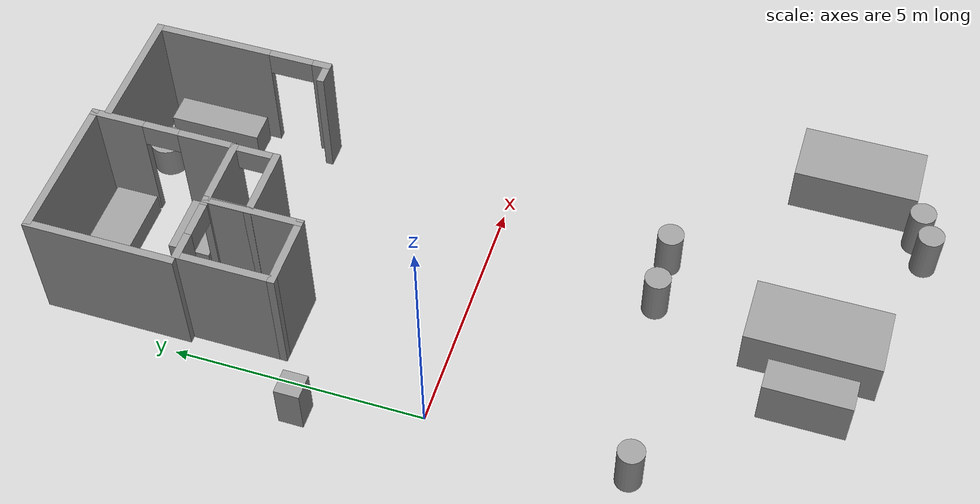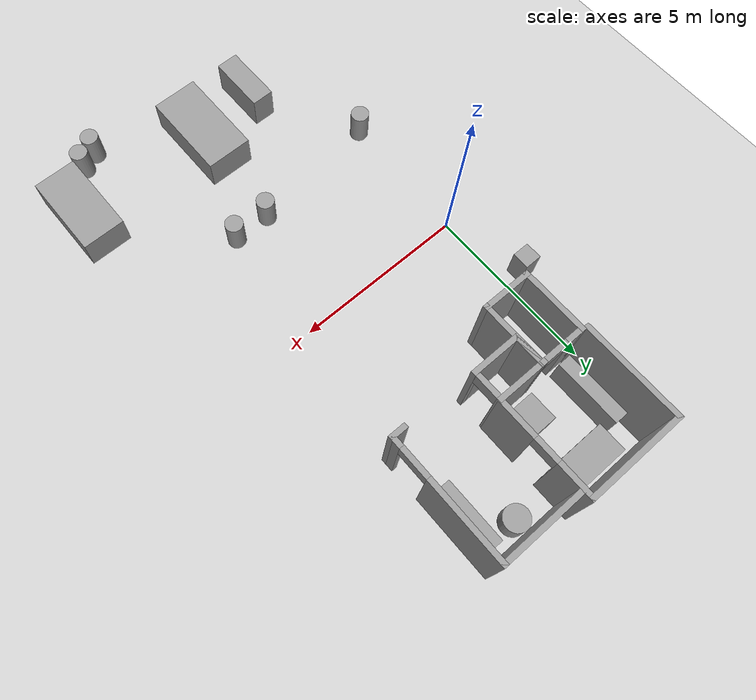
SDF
<sdf version="1.9">
 <world name="default">
  <model name="ground_plane">
   <static>true</static>
   <link name="link">
    <collision name="collision">
     <geometry><plane><normal>0 0 1</normal><size>100 100</size></plane></geometry>
     <surface><friction><ode><mu>100</mu><mu2>50</mu2></ode></friction></surface>
    </collision>
    <visual name="visual">
     <cast_shadows>false</cast_shadows>
     <geometry><plane><normal>0 0 1</normal><size>100 100</size></plane></geometry>
     <material>
      <script><uri>file://media/materials/scripts/gazebo.material</uri><name>Gazebo/Grey</name></script>
     </material>
    </visual>
   </link>
  </model>
  <model name="cma_dispensa">
   <pose>2.5258400000000001 4.4011899999999997 0 0 0 0</pose>
   <link name="Wall_5">
    <collision name="Wall_5_Collision">
     <geometry><box><size>1 0.14999999999999999 2.5</size></box></geometry>
     <pose>0 0 1.25 0 0 0</pose>
    </collision>
    <visual name="Wall_5_Visual">
     <pose>0 0 1.25 0 0 0</pose>
     <geometry><box><size>1 0.14999999999999999 2.5</size></box></geometry>
     <material>
      <script><uri>file://media/materials/scripts/gazebo.material</uri><name>Gazebo/Grey</name></script>
      <ambient>1 1 1 1</ambient>
     </material>
    </visual>
    <pose>-0.67500000000000004 0 0 0 0 1.5708</pose>
   </link>
   <link name="Wall_6">
    <collision name="Wall_6_Collision">
     <geometry><box><size>1.5 0.14999999999999999 2.5</size></box></geometry>
     <pose>0 0 1.25 0 0 0</pose>
    </collision>
    <visual name="Wall_6_Visual">
     <pose>0 0 1.25 0 0 0</pose>
     <geometry><box><size>1.5 0.14999999999999999 2.5</size></box></geometry>
     <material>
      <script><uri>file://media/materials/scripts/gazebo.material</uri><name>Gazebo/Grey</name></script>
      <ambient>1 1 1 1</ambient>
     </material>
    </visual>
    <pose>0 0.42499999999999999 0 0 0 0</pose>
   </link>
   <link name="Wall_7">
    <pose>0.67500000000000004 0 0 0 0 -1.5708</pose>
    <visual name="Wall_7_Visual_0">
     <pose>-0.42749999999999999 0 1.25 0 0 0</pose>
     <geometry><box><size>0.14499999999999999 0.14999999999999999 2.5</size></box></geometry>
     <material>
      <script><uri>file://media/materials/scripts/gazebo.material</uri><name>Gazebo/Grey</name></script>
      <ambient>1 1 1 1</ambient>
     </material>
    </visual>
    <collision name="Wall_7_Collision_0">
     <geometry><box><size>0.14499999999999999 0.14999999999999999 2.5</size></box></geometry>
     <pose>-0.42749999999999999 0 1.25 0 0 0</pose>
    </collision>
    <visual name="Wall_7_Visual_1">
     <pose>0.42249999999999999 0 1.25 0 0 0</pose>
     <geometry><box><size>0.155 0.14999999999999999 2.5</size></box></geometry>
     <material>
      <script><uri>file://media/materials/scripts/gazebo.material</uri><name>Gazebo/Grey</name></script>
      <ambient>1 1 1 1</ambient>
     </material>
    </visual>
    <collision name="Wall_7_Collision_1">
     <geometry><box><size>0.155 0.14999999999999999 2.5</size></box></geometry>
     <pose>0.42249999999999999 0 1.25 0 0 0</pose>
    </collision>
    <visual name="Wall_7_Visual_2">
     <pose>-0.0050000000000000001 0 2.25 0 0 0</pose>
     <geometry><box><size>0.69999999999999996 0.14999999999999999 0.5</size></box></geometry>
     <material>
      <script><uri>file://media/materials/scripts/gazebo.material</uri><name>Gazebo/Grey</name></script>
      <ambient>1 1 1 1</ambient>
     </material>
    </visual>
    <collision name="Wall_7_Collision_2">
     <geometry><box><size>0.69999999999999996 0.14999999999999999 0.5</size></box></geometry>
     <pose>-0.0050000000000000001 0 2.25 0 0 0</pose>
    </collision>
   </link>
   <link name="Wall_8">
    <collision name="Wall_8_Collision">
     <geometry><box><size>1.5 0.14999999999999999 2.5</size></box></geometry>
     <pose>0 0 1.25 0 0 0</pose>
    </collision>
    <visual name="Wall_8_Visual">
     <pose>0 0 1.25 0 0 0</pose>
     <geometry><box><size>1.5 0.14999999999999999 2.5</size></box></geometry>
     <material>
      <script><uri>file://media/materials/scripts/gazebo.material</uri><name>Gazebo/Grey</name></script>
      <ambient>1 1 1 1</ambient>
     </material>
    </visual>
    <pose>0 -0.42499999999999999 0 0 0 3.1415899999999999</pose>
   </link>
   <static>true</static>
  </model>
  <model name="cma_banheiro_e">
   <pose>1.1835800000000001 3.89879 0 0 0 0</pose>
   <link name="Wall_10">
    <collision name="Wall_10_Collision">
     <geometry><box><size>1.5 0.14999999999999999 2.5</size></box></geometry>
     <pose>0 0 1.25 0 0 0</pose>
    </collision>
    <visual name="Wall_10_Visual">
     <pose>0 0 1.25 0 0 0</pose>
     <geometry><box><size>1.5 0.14999999999999999 2.5</size></box></geometry>
     <material>
      <script><uri>file://media/materials/scripts/gazebo.material</uri><name>Gazebo/Grey</name></script>
      <ambient>1 1 1 1</ambient>
     </material>
    </visual>
    <pose>0 -0.92500000000000004 0 0 0 3.1415899999999999</pose>
   </link>
   <link name="Wall_11">
    <collision name="Wall_11_Collision">
     <geometry><box><size>2 0.14999999999999999 2.5</size></box></geometry>
     <pose>0 0 1.25 0 0 0</pose>
    </collision>
    <visual name="Wall_11_Visual">
     <pose>0 0 1.25 0 0 0</pose>
     <geometry><box><size>2 0.14999999999999999 2.5</size></box></geometry>
     <material>
      <script><uri>file://media/materials/scripts/gazebo.material</uri><name>Gazebo/Grey</name></script>
      <ambient>1 1 1 1</ambient>
     </material>
    </visual>
    <pose>-0.67500000000000004 0 0 0 0 1.5708</pose>
   </link>
   <link name="Wall_12">
    <pose>0 0.92500000000000004 0 0 0 0</pose>
    <visual name="Wall_12_Visual_0">
     <pose>-0.46250000000000002 0 1.25 0 0 0</pose>
     <geometry><box><size>0.57499999999999996 0.14999999999999999 2.5</size></box></geometry>
     <material>
      <script><uri>file://media/materials/scripts/gazebo.material</uri><name>Gazebo/Grey</name></script>
      <ambient>1 1 1 1</ambient>
     </material>
    </visual>
    <collision name="Wall_12_Collision_0">
     <geometry><box><size>0.57499999999999996 0.14999999999999999 2.5</size></box></geometry>
     <pose>-0.46250000000000002 0 1.25 0 0 0</pose>
    </collision>
    <visual name="Wall_12_Visual_1">
     <pose>0.64749999999999996 0 1.25 0 0 0</pose>
     <geometry><box><size>0.20499999999999999 0.14999999999999999 2.5</size></box></geometry>
     <material>
      <script><uri>file://media/materials/scripts/gazebo.material</uri><name>Gazebo/Grey</name></script>
      <ambient>1 1 1 1</ambient>
     </material>
    </visual>
    <collision name="Wall_12_Collision_1">
     <geometry><box><size>0.20499999999999999 0.14999999999999999 2.5</size></box></geometry>
     <pose>0.64749999999999996 0 1.25 0 0 0</pose>
    </collision>
    <visual name="Wall_12_Visual_2">
     <pose>0.185 0 2.25 0 0 0</pose>
     <geometry><box><size>0.71999999999999997 0.14999999999999999 0.5</size></box></geometry>
     <material>
      <script><uri>file://media/materials/scripts/gazebo.material</uri><name>Gazebo/Grey</name></script>
      <ambient>1 1 1 1</ambient>
     </material>
    </visual>
    <collision name="Wall_12_Collision_2">
     <geometry><box><size>0.71999999999999997 0.14999999999999999 0.5</size></box></geometry>
     <pose>0.185 0 2.25 0 0 0</pose>
    </collision>
   </link>
   <link name="Wall_13">
    <collision name="Wall_13_Collision">
     <geometry><box><size>2 0.14999999999999999 2.5</size></box></geometry>
     <pose>0 0 1.25 0 0 0</pose>
    </collision>
    <visual name="Wall_13_Visual">
     <pose>0 0 1.25 0 0 0</pose>
     <geometry><box><size>2 0.14999999999999999 2.5</size></box></geometry>
     <material>
      <script><uri>file://media/materials/scripts/gazebo.material</uri><name>Gazebo/Grey</name></script>
      <ambient>1 1 1 1</ambient>
     </material>
    </visual>
    <pose>0.67500000000000004 0 0 0 0 -1.5708</pose>
   </link>
   <static>true</static>
  </model>
  <model name="cma_qe">
   <pose>1.7956099999999999 6.3122800000000003 0 0 0 0</pose>
   <link name="Wall_15">
    <collision name="Wall_15_Collision">
     <geometry><box><size>3 0.14999999999999999 2.5</size></box></geometry>
     <pose>0 0 1.25 0 0 0</pose>
    </collision>
    <visual name="Wall_15_Visual">
     <pose>0 0 1.25 0 0 0</pose>
     <geometry><box><size>3 0.14999999999999999 2.5</size></box></geometry>
     <material>
      <script><uri>file://media/materials/scripts/gazebo.material</uri><name>Gazebo/Grey</name></script>
      <ambient>1 1 1 1</ambient>
     </material>
    </visual>
    <pose>-1.425 0 0 0 0 1.5708</pose>
   </link>
   <link name="Wall_16">
    <collision name="Wall_16_Collision">
     <geometry><box><size>3 0.14999999999999999 2.5</size></box></geometry>
     <pose>0 0 1.25 0 0 0</pose>
    </collision>
    <visual name="Wall_16_Visual">
     <pose>0 0 1.25 0 0 0</pose>
     <geometry><box><size>3 0.14999999999999999 2.5</size></box></geometry>
     <material>
      <script><uri>file://media/materials/scripts/gazebo.material</uri><name>Gazebo/Grey</name></script>
      <ambient>1 1 1 1</ambient>
     </material>
    </visual>
    <pose>0 1.425 0 0 0 0</pose>
   </link>
   <link name="Wall_17">
    <pose>1.425 0 0 0 0 -1.5708</pose>
    <visual name="Wall_17_Visual_0">
     <pose>-0.94499999999999995 0 1.25 0 0 0</pose>
     <geometry><box><size>1.1100000000000001 0.14999999999999999 2.5</size></box></geometry>
     <material>
      <script><uri>file://media/materials/scripts/gazebo.material</uri><name>Gazebo/Grey</name></script>
      <ambient>1 1 1 1</ambient>
     </material>
    </visual>
    <collision name="Wall_17_Collision_0">
     <geometry><box><size>1.1100000000000001 0.14999999999999999 2.5</size></box></geometry>
     <pose>-0.94499999999999995 0 1.25 0 0 0</pose>
    </collision>
    <visual name="Wall_17_Visual_1">
     <pose>0.92000000000000004 0 1.25 0 0 0</pose>
     <geometry><box><size>1.1599999999999999 0.14999999999999999 2.5</size></box></geometry>
     <material>
      <script><uri>file://media/materials/scripts/gazebo.material</uri><name>Gazebo/Grey</name></script>
      <ambient>1 1 1 1</ambient>
     </material>
    </visual>
    <collision name="Wall_17_Collision_1">
     <geometry><box><size>1.1599999999999999 0.14999999999999999 2.5</size></box></geometry>
     <pose>0.92000000000000004 0 1.25 0 0 0</pose>
    </collision>
    <visual name="Wall_17_Visual_2">
     <pose>-0.025000000000000001 0 2.25 0 0 0</pose>
     <geometry><box><size>0.72999999999999998 0.14999999999999999 0.5</size></box></geometry>
     <material>
      <script><uri>file://media/materials/scripts/gazebo.material</uri><name>Gazebo/Grey</name></script>
      <ambient>1 1 1 1</ambient>
     </material>
    </visual>
    <collision name="Wall_17_Collision_2">
     <geometry><box><size>0.72999999999999998 0.14999999999999999 0.5</size></box></geometry>
     <pose>-0.025000000000000001 0 2.25 0 0 0</pose>
    </collision>
   </link>
   <static>true</static>
  </model>
  <model name="cma_area2">
   <pose>4.5227500000000003 5.6786199999999996 0 0 0 0</pose>
   <link name="Wall_23">
    <collision name="Wall_23_Collision">
     <geometry><box><size>2.5 0.14999999999999999 2.5</size></box></geometry>
     <pose>0 0 1.25 0 0 0</pose>
    </collision>
    <visual name="Wall_23_Visual">
     <pose>0 0 1.25 0 0 0</pose>
     <geometry><box><size>2.5 0.14999999999999999 2.5</size></box></geometry>
     <material>
      <script><uri>file://media/materials/scripts/gazebo.material</uri><name>Gazebo/Grey</name></script>
      <ambient>1 1 1 1</ambient>
     </material>
    </visual>
    <pose>0 1.8 0 0 0 0</pose>
   </link>
   <link name="Wall_24">
    <pose>1.175 0 0 0 0 -1.5708</pose>
    <visual name="Wall_24_Visual_0">
     <pose>-0.64249999999999996 0 1.25 0 0 0</pose>
     <geometry><box><size>2.4649999999999999 0.14999999999999999 2.5</size></box></geometry>
     <material>
      <script><uri>file://media/materials/scripts/gazebo.material</uri><name>Gazebo/Grey</name></script>
      <ambient>1 1 1 1</ambient>
     </material>
    </visual>
    <collision name="Wall_24_Collision_0">
     <geometry><box><size>2.4649999999999999 0.14999999999999999 2.5</size></box></geometry>
     <pose>-0.64249999999999996 0 1.25 0 0 0</pose>
    </collision>
    <visual name="Wall_24_Visual_1">
     <pose>1.6825000000000001 0 1.25 0 0 0</pose>
     <geometry><box><size>0.38500000000000001 0.14999999999999999 2.5</size></box></geometry>
     <material>
      <script><uri>file://media/materials/scripts/gazebo.material</uri><name>Gazebo/Grey</name></script>
      <ambient>1 1 1 1</ambient>
     </material>
    </visual>
    <collision name="Wall_24_Collision_1">
     <geometry><box><size>0.38500000000000001 0.14999999999999999 2.5</size></box></geometry>
     <pose>1.6825000000000001 0 1.25 0 0 0</pose>
    </collision>
    <visual name="Wall_24_Visual_2">
     <pose>1.04 0 2.25 0 0 0</pose>
     <geometry><box><size>0.90000000000000002 0.14999999999999999 0.5</size></box></geometry>
     <material>
      <script><uri>file://media/materials/scripts/gazebo.material</uri><name>Gazebo/Grey</name></script>
      <ambient>1 1 1 1</ambient>
     </material>
    </visual>
    <collision name="Wall_24_Collision_2">
     <geometry><box><size>0.90000000000000002 0.14999999999999999 0.5</size></box></geometry>
     <pose>1.04 0 2.25 0 0 0</pose>
    </collision>
   </link>
   <link name="Wall_25">
    <collision name="Wall_25_Collision">
     <geometry><box><size>0.5 0.14999999999999999 2.5</size></box></geometry>
     <pose>0 0 1.25 0 0 0</pose>
    </collision>
    <visual name="Wall_25_Visual">
     <pose>0 0 1.25 0 0 0</pose>
     <geometry><box><size>0.5 0.14999999999999999 2.5</size></box></geometry>
     <material>
      <script><uri>file://media/materials/scripts/gazebo.material</uri><name>Gazebo/Grey</name></script>
      <ambient>1 1 1 1</ambient>
     </material>
    </visual>
    <pose>1 -1.8 0 0 0 3.1415899999999999</pose>
   </link>
   <static>true</static>
  </model>
  <model name="cma_gaveteiro">
   <link name="link_0">
    <pose>0 3.9999999999999998e-06 0 0 0 0</pose>
    <inertial>
     <mass>0.245086</mass>
     <inertia>
      <ixx>0.025418</ixx>
      <ixy>0</ixy>
      <ixz>0</ixz>
      <iyy>0.025441100000000001</iyy>
      <iyz>0</iyz>
      <izz>0.010011300000000001</izz>
     </inertia>
    </inertial>
    <visual name="visual">
     <geometry><box><size>0.49565700000000001 0.49449100000000001 1</size></box></geometry>
     <material>
      <lighting>true</lighting>
      <script><uri>file://media/materials/scripts/gazebo.material</uri><name>Gazebo/Grey</name></script>
      <ambient>0.300000012 0.300000012 0.300000012 1</ambient>
      <diffuse>0.699999988 0.699999988 0.699999988 1</diffuse>
      <specular>0.00999999978 0.00999999978 0.00999999978 1</specular>
      <emissive>0 0 0 1</emissive>
     </material>
    </visual>
    <collision name="collision">
     <geometry><box><size>0.49565700000000001 0.49449100000000001 1</size></box></geometry>
     <surface>
      <friction>
       <ode><mu>1</mu><mu2>1</mu2><fdir1>0 0 0</fdir1><slip1>0</slip1><slip2>0</slip2></ode>
       <torsional>
        <coefficient>1</coefficient>
        <patch_radius>0</patch_radius>
        <surface_radius>0</surface_radius>
        <use_patch_radius>true</use_patch_radius>
        <ode><slip>0</slip></ode>
       </torsional>
      </friction>
      <bounce><restitution_coefficient>0</restitution_coefficient><threshold>1000000</threshold></bounce>
      <contact>
       <collide_without_contact>false</collide_without_contact>
       <collide_without_contact_bitmask>1</collide_without_contact_bitmask>
       <collide_bitmask>1</collide_bitmask>
       <ode>
        <soft_cfm>0</soft_cfm>
        <soft_erp>0.20000000000000001</soft_erp>
        <kp>10000000000000</kp>
        <kd>1</kd>
        <max_vel>0.01</max_vel>
        <min_depth>0</min_depth>
       </ode>
       <bullet>
        <split_impulse>true</split_impulse>
        <split_impulse_penetration_threshold>-0.01</split_impulse_penetration_threshold>
        <soft_cfm>0</soft_cfm>
        <soft_erp>0.20000000000000001</soft_erp>
        <kp>10000000000000</kp>
        <kd>1</kd>
       </bullet>
      </contact>
     </surface>
    </collision>
   </link>
   <static>false</static>
   <pose>-0.59198499999999998 2.3261799999999999 0.49999700000000002 6.000000000000001e-06 6.0000000000000002e-06 0.00042900000000000002</pose>
  </model>
  <model name="cma_sofa_ch2">
   <link name="link_0">
    <pose>7.5415200000000002 -9.0606100000000005 0.5 0 0 0</pose>
    <inertial>
     <mass>3.05287</mass>
     <inertia>
      <ixx>1.79053</ixx>
      <ixy>0</ixy>
      <ixz>0</ixz>
      <iyy>0.64708900000000003</iyy>
      <iyz>0</iyz>
      <izz>1.9288099999999999</izz>
     </inertia>
    </inertial>
    <visual name="visual">
     <geometry><box><size>1.2423500000000001 2.45729 1</size></box></geometry>
     <material>
      <lighting>true</lighting>
      <script><uri>file://media/materials/scripts/gazebo.material</uri><name>Gazebo/Grey</name></script>
      <ambient>0.300000012 0.300000012 0.300000012 1</ambient>
      <diffuse>0.699999988 0.699999988 0.699999988 1</diffuse>
      <specular>0.00999999978 0.00999999978 0.00999999978 1</specular>
      <emissive>0 0 0 1</emissive>
     </material>
    </visual>
    <collision name="collision">
     <geometry><box><size>1.2423500000000001 2.45729 1</size></box></geometry>
     <surface>
      <friction>
       <ode><mu>1</mu><mu2>1</mu2><fdir1>0 0 0</fdir1><slip1>0</slip1><slip2>0</slip2></ode>
       <torsional>
        <coefficient>1</coefficient>
        <patch_radius>0</patch_radius>
        <surface_radius>0</surface_radius>
        <use_patch_radius>true</use_patch_radius>
        <ode><slip>0</slip></ode>
       </torsional>
      </friction>
      <bounce><restitution_coefficient>0</restitution_coefficient><threshold>1000000</threshold></bounce>
      <contact>
       <collide_without_contact>false</collide_without_contact>
       <collide_without_contact_bitmask>1</collide_without_contact_bitmask>
       <collide_bitmask>1</collide_bitmask>
       <ode>
        <soft_cfm>0</soft_cfm>
        <soft_erp>0.20000000000000001</soft_erp>
        <kp>10000000000000</kp>
        <kd>1</kd>
        <max_vel>0.01</max_vel>
        <min_depth>0</min_depth>
       </ode>
       <bullet>
        <split_impulse>true</split_impulse>
        <split_impulse_penetration_threshold>-0.01</split_impulse_penetration_threshold>
        <soft_cfm>0</soft_cfm>
        <soft_erp>0.20000000000000001</soft_erp>
        <kp>10000000000000</kp>
        <kd>1</kd>
       </bullet>
      </contact>
     </surface>
    </collision>
   </link>
   <model name="cma_armarioL">
    <link name="link_0">
     <pose>3.6622599999999998 -6.1673499999999999 0.5 0 0 0</pose>
     <inertial>
      <mass>1.0482100000000001</mass>
      <inertia>
       <ixx>0.33087299999999997</ixx>
       <ixy>0</ixy>
       <ixz>0</ixz>
       <iyy>0.121777</iyy>
       <iyz>0</iyz>
       <izz>0.277949</izz>
      </inertia>
     </inertial>
     <visual name="visual">
      <geometry><box><size>0.62779200000000002 1.6697200000000001 1</size></box></geometry>
      <material>
       <lighting>true</lighting>
       <script><uri>file://media/materials/scripts/gazebo.material</uri><name>Gazebo/Grey</name></script>
       <ambient>0.300000012 0.300000012 0.300000012 1</ambient>
       <diffuse>0.699999988 0.699999988 0.699999988 1</diffuse>
       <specular>0.00999999978 0.00999999978 0.00999999978 1</specular>
       <emissive>0 0 0 1</emissive>
      </material>
     </visual>
     <collision name="collision">
      <geometry><box><size>0.62779200000000002 1.6697200000000001 1</size></box></geometry>
      <surface>
       <friction>
        <ode><mu>1</mu><mu2>1</mu2><fdir1>0 0 0</fdir1><slip1>0</slip1><slip2>0</slip2></ode>
        <torsional>
         <coefficient>1</coefficient>
         <patch_radius>0</patch_radius>
         <surface_radius>0</surface_radius>
         <use_patch_radius>true</use_patch_radius>
         <ode><slip>0</slip></ode>
        </torsional>
       </friction>
       <bounce><restitution_coefficient>0</restitution_coefficient><threshold>1000000</threshold></bounce>
       <contact>
        <collide_without_contact>false</collide_without_contact>
        <collide_without_contact_bitmask>1</collide_without_contact_bitmask>
        <collide_bitmask>1</collide_bitmask>
        <ode>
         <soft_cfm>0</soft_cfm>
         <soft_erp>0.20000000000000001</soft_erp>
         <kp>10000000000000</kp>
         <kd>1</kd>
         <max_vel>0.01</max_vel>
         <min_depth>0</min_depth>
        </ode>
        <bullet>
         <split_impulse>true</split_impulse>
         <split_impulse_penetration_threshold>-0.01</split_impulse_penetration_threshold>
         <soft_cfm>0</soft_cfm>
         <soft_erp>0.20000000000000001</soft_erp>
         <kp>10000000000000</kp>
         <kd>1</kd>
        </bullet>
       </contact>
      </surface>
     </collision>
    </link>
    <static>false</static>
    <pose>-1.9180299999999999 -2.9201100000000002 0.5 0 0 0</pose>
   </model>
   <model name="cma_cesto">
    <link name="link_1">
     <pose>-0.32965899999999998 -1.55494 0 0 0 0</pose>
     <inertial>
      <mass>0.267897</mass>
      <inertia>
       <ixx>0.026810199999999999</ixx>
       <ixy>0</ixy>
       <ixz>0</ixz>
       <iyy>0.026810199999999999</iyy>
       <iyz>0</iyz>
       <izz>0.0089711099999999992</izz>
      </inertia>
     </inertial>
     <visual name="visual">
      <geometry><cylinder><radius>0.25879200000000002</radius><length>1</length></cylinder></geometry>
      <material>
       <lighting>true</lighting>
       <script><uri>file://media/materials/scripts/gazebo.material</uri><name>Gazebo/Grey</name></script>
       <ambient>0.300000012 0.300000012 0.300000012 1</ambient>
       <diffuse>0.699999988 0.699999988 0.699999988 1</diffuse>
       <specular>0.00999999978 0.00999999978 0.00999999978 1</specular>
       <emissive>0 0 0 1</emissive>
      </material>
     </visual>
     <collision name="collision">
      <geometry><cylinder><radius>0.25879200000000002</radius><length>1</length></cylinder></geometry>
      <surface>
       <friction>
        <ode><mu>1</mu><mu2>1</mu2><fdir1>0 0 0</fdir1><slip1>0</slip1><slip2>0</slip2></ode>
        <torsional>
         <coefficient>1</coefficient>
         <patch_radius>0</patch_radius>
         <surface_radius>0</surface_radius>
         <use_patch_radius>true</use_patch_radius>
         <ode><slip>0</slip></ode>
        </torsional>
       </friction>
       <bounce><restitution_coefficient>0</restitution_coefficient><threshold>1000000</threshold></bounce>
       <contact>
        <collide_without_contact>false</collide_without_contact>
        <collide_without_contact_bitmask>1</collide_without_contact_bitmask>
        <collide_bitmask>1</collide_bitmask>
        <ode>
         <soft_cfm>0</soft_cfm>
         <soft_erp>0.20000000000000001</soft_erp>
         <kp>10000000000000</kp>
         <kd>1</kd>
         <max_vel>0.01</max_vel>
         <min_depth>0</min_depth>
        </ode>
        <bullet>
         <split_impulse>true</split_impulse>
         <split_impulse_penetration_threshold>-0.01</split_impulse_penetration_threshold>
         <soft_cfm>0</soft_cfm>
         <soft_erp>0.20000000000000001</soft_erp>
         <kp>10000000000000</kp>
         <kd>1</kd>
        </bullet>
       </contact>
      </surface>
     </collision>
    </link>
    <static>false</static>
    <pose>6.9793500000000002 -8.8850899999999999 0.5 0 0 0</pose>
   </model>
   <model name="cma_cesto_0">
    <link name="link_1">
     <pose>-0.32965899999999998 -1.55494 0 0 0 0</pose>
     <inertial>
      <mass>0.267897</mass>
      <inertia>
       <ixx>0.026810199999999999</ixx>
       <ixy>0</ixy>
       <ixz>0</ixz>
       <iyy>0.026810199999999999</iyy>
       <iyz>0</iyz>
       <izz>0.0089711099999999992</izz>
      </inertia>
     </inertial>
     <visual name="visual">
      <geometry><cylinder><radius>0.25879200000000002</radius><length>1</length></cylinder></geometry>
      <material>
       <lighting>true</lighting>
       <script><uri>file://media/materials/scripts/gazebo.material</uri><name>Gazebo/Grey</name></script>
       <ambient>0.300000012 0.300000012 0.300000012 1</ambient>
       <diffuse>0.699999988 0.699999988 0.699999988 1</diffuse>
       <specular>0.00999999978 0.00999999978 0.00999999978 1</specular>
       <emissive>0 0 0 1</emissive>
      </material>
     </visual>
     <collision name="collision">
      <geometry><cylinder><radius>0.25879200000000002</radius><length>1</length></cylinder></geometry>
      <surface>
       <friction>
        <ode><mu>1</mu><mu2>1</mu2><fdir1>0 0 0</fdir1><slip1>0</slip1><slip2>0</slip2></ode>
        <torsional>
         <coefficient>1</coefficient>
         <patch_radius>0</patch_radius>
         <surface_radius>0</surface_radius>
         <use_patch_radius>true</use_patch_radius>
         <ode><slip>0</slip></ode>
        </torsional>
       </friction>
       <bounce><restitution_coefficient>0</restitution_coefficient><threshold>1000000</threshold></bounce>
       <contact>
        <collide_without_contact>false</collide_without_contact>
        <collide_without_contact_bitmask>1</collide_without_contact_bitmask>
        <collide_bitmask>1</collide_bitmask>
        <ode>
         <soft_cfm>0</soft_cfm>
         <soft_erp>0.20000000000000001</soft_erp>
         <kp>10000000000000</kp>
         <kd>1</kd>
         <max_vel>0.01</max_vel>
         <min_depth>0</min_depth>
        </ode>
        <bullet>
         <split_impulse>true</split_impulse>
         <split_impulse_penetration_threshold>-0.01</split_impulse_penetration_threshold>
         <soft_cfm>0</soft_cfm>
         <soft_erp>0.20000000000000001</soft_erp>
         <kp>10000000000000</kp>
         <kd>1</kd>
        </bullet>
       </contact>
      </surface>
     </collision>
    </link>
    <static>false</static>
    <pose>6.4663000000000004 -9.1192200000000003 0.5 0 0 0</pose>
   </model>
   <model name="cma_cesto_1">
    <link name="link_1">
     <pose>-0.32965899999999998 -1.55494 0 0 0 0</pose>
     <inertial>
      <mass>0.267897</mass>
      <inertia>
       <ixx>0.026810199999999999</ixx>
       <ixy>0</ixy>
       <ixz>0</ixz>
       <iyy>0.026810199999999999</iyy>
       <iyz>0</iyz>
       <izz>0.0089711099999999992</izz>
      </inertia>
     </inertial>
     <visual name="visual">
      <geometry><cylinder><radius>0.25879200000000002</radius><length>1</length></cylinder></geometry>
      <material>
       <lighting>true</lighting>
       <script><uri>file://media/materials/scripts/gazebo.material</uri><name>Gazebo/Grey</name></script>
       <ambient>0.300000012 0.300000012 0.300000012 1</ambient>
       <diffuse>0.699999988 0.699999988 0.699999988 1</diffuse>
       <specular>0.00999999978 0.00999999978 0.00999999978 1</specular>
       <emissive>0 0 0 1</emissive>
      </material>
     </visual>
     <collision name="collision">
      <geometry><cylinder><radius>0.25879200000000002</radius><length>1</length></cylinder></geometry>
      <surface>
       <friction>
        <ode><mu>1</mu><mu2>1</mu2><fdir1>0 0 0</fdir1><slip1>0</slip1><slip2>0</slip2></ode>
        <torsional>
         <coefficient>1</coefficient>
         <patch_radius>0</patch_radius>
         <surface_radius>0</surface_radius>
         <use_patch_radius>true</use_patch_radius>
         <ode><slip>0</slip></ode>
        </torsional>
       </friction>
       <bounce><restitution_coefficient>0</restitution_coefficient><threshold>1000000</threshold></bounce>
       <contact>
        <collide_without_contact>false</collide_without_contact>
        <collide_without_contact_bitmask>1</collide_without_contact_bitmask>
        <collide_bitmask>1</collide_bitmask>
        <ode>
         <soft_cfm>0</soft_cfm>
         <soft_erp>0.20000000000000001</soft_erp>
         <kp>10000000000000</kp>
         <kd>1</kd>
         <max_vel>0.01</max_vel>
         <min_depth>0</min_depth>
        </ode>
        <bullet>
         <split_impulse>true</split_impulse>
         <split_impulse_penetration_threshold>-0.01</split_impulse_penetration_threshold>
         <soft_cfm>0</soft_cfm>
         <soft_erp>0.20000000000000001</soft_erp>
         <kp>10000000000000</kp>
         <kd>1</kd>
        </bullet>
       </contact>
      </surface>
     </collision>
    </link>
    <static>false</static>
    <pose>0.091229000000000005 -4.78918 0.5 0 0 0</pose>
   </model>
   <model name="cma_cesto_2">
    <link name="link_1">
     <pose>-0.32965899999999998 -1.55494 0 0 0 0</pose>
     <inertial>
      <mass>0.267897</mass>
      <inertia>
       <ixx>0.026810199999999999</ixx>
       <ixy>0</ixy>
       <ixz>0</ixz>
       <iyy>0.026810199999999999</iyy>
       <iyz>0</iyz>
       <izz>0.0089711099999999992</izz>
      </inertia>
     </inertial>
     <visual name="visual">
      <geometry><cylinder><radius>0.25879200000000002</radius><length>1</length></cylinder></geometry>
      <material>
       <lighting>true</lighting>
       <script><uri>file://media/materials/scripts/gazebo.material</uri><name>Gazebo/Grey</name></script>
       <ambient>0.300000012 0.300000012 0.300000012 1</ambient>
       <diffuse>0.699999988 0.699999988 0.699999988 1</diffuse>
       <specular>0.00999999978 0.00999999978 0.00999999978 1</specular>
       <emissive>0 0 0 1</emissive>
      </material>
     </visual>
     <collision name="collision">
      <geometry><cylinder><radius>0.25879200000000002</radius><length>1</length></cylinder></geometry>
      <surface>
       <friction>
        <ode><mu>1</mu><mu2>1</mu2><fdir1>0 0 0</fdir1><slip1>0</slip1><slip2>0</slip2></ode>
        <torsional>
         <coefficient>1</coefficient>
         <patch_radius>0</patch_radius>
         <surface_radius>0</surface_radius>
         <use_patch_radius>true</use_patch_radius>
         <ode><slip>0</slip></ode>
        </torsional>
       </friction>
       <bounce><restitution_coefficient>0</restitution_coefficient><threshold>1000000</threshold></bounce>
       <contact>
        <collide_without_contact>false</collide_without_contact>
        <collide_without_contact_bitmask>1</collide_without_contact_bitmask>
        <collide_bitmask>1</collide_bitmask>
        <ode>
         <soft_cfm>0</soft_cfm>
         <soft_erp>0.20000000000000001</soft_erp>
         <kp>10000000000000</kp>
         <kd>1</kd>
         <max_vel>0.01</max_vel>
         <min_depth>0</min_depth>
        </ode>
        <bullet>
         <split_impulse>true</split_impulse>
         <split_impulse_penetration_threshold>-0.01</split_impulse_penetration_threshold>
         <soft_cfm>0</soft_cfm>
         <soft_erp>0.20000000000000001</soft_erp>
         <kp>10000000000000</kp>
         <kd>1</kd>
        </bullet>
       </contact>
      </surface>
     </collision>
    </link>
    <static>false</static>
    <pose>5.00434 -4.3001500000000004 0.5 0 0 0</pose>
   </model>
   <model name="cma_cesto_3">
    <link name="link_1">
     <pose>-0.32965899999999998 -1.55494 0 0 0 0</pose>
     <inertial>
      <mass>0.267897</mass>
      <inertia>
       <ixx>0.026810199999999999</ixx>
       <ixy>0</ixy>
       <ixz>0</ixz>
       <iyy>0.026810199999999999</iyy>
       <iyz>0</iyz>
       <izz>0.0089711099999999992</izz>
      </inertia>
     </inertial>
     <visual name="visual">
      <geometry><cylinder><radius>0.25879200000000002</radius><length>1</length></cylinder></geometry>
      <material>
       <lighting>true</lighting>
       <script><uri>file://media/materials/scripts/gazebo.material</uri><name>Gazebo/Grey</name></script>
       <ambient>0.300000012 0.300000012 0.300000012 1</ambient>
       <diffuse>0.699999988 0.699999988 0.699999988 1</diffuse>
       <specular>0.00999999978 0.00999999978 0.00999999978 1</specular>
       <emissive>0 0 0 1</emissive>
      </material>
     </visual>
     <collision name="collision">
      <geometry><cylinder><radius>0.25879200000000002</radius><length>1</length></cylinder></geometry>
      <surface>
       <friction>
        <ode><mu>1</mu><mu2>1</mu2><fdir1>0 0 0</fdir1><slip1>0</slip1><slip2>0</slip2></ode>
        <torsional>
         <coefficient>1</coefficient>
         <patch_radius>0</patch_radius>
         <surface_radius>0</surface_radius>
         <use_patch_radius>true</use_patch_radius>
         <ode><slip>0</slip></ode>
        </torsional>
       </friction>
       <bounce><restitution_coefficient>0</restitution_coefficient><threshold>1000000</threshold></bounce>
       <contact>
        <collide_without_contact>false</collide_without_contact>
        <collide_without_contact_bitmask>1</collide_without_contact_bitmask>
        <collide_bitmask>1</collide_bitmask>
        <ode>
         <soft_cfm>0</soft_cfm>
         <soft_erp>0.20000000000000001</soft_erp>
         <kp>10000000000000</kp>
         <kd>1</kd>
         <max_vel>0.01</max_vel>
         <min_depth>0</min_depth>
        </ode>
        <bullet>
         <split_impulse>true</split_impulse>
         <split_impulse_penetration_threshold>-0.01</split_impulse_penetration_threshold>
         <soft_cfm>0</soft_cfm>
         <soft_erp>0.20000000000000001</soft_erp>
         <kp>10000000000000</kp>
         <kd>1</kd>
        </bullet>
       </contact>
      </surface>
     </collision>
    </link>
    <static>false</static>
    <pose>3.9176799999999998 -4.3154000000000003 0.5 0 0 0</pose>
   </model>
   <model name="cma_sofa_ch1">
    <link name="link_0">
     <pose>-3.9999999999999998e-06 5.0000000000000004e-06 0 0 0 0</pose>
     <inertial>
      <mass>3.5119199999999999</mass>
      <inertia>
       <ixx>2.3083100000000001</ixx>
       <ixy>0</ixy>
       <ixz>0</ixz>
       <iyy>0.81674599999999997</iyy>
       <iyz>0</iyz>
       <izz>2.5397400000000001</izz>
      </inertia>
     </inertial>
     <visual name="visual">
      <geometry><box><size>1.33823 2.62439 1</size></box></geometry>
      <material>
       <lighting>true</lighting>
       <script><uri>file://media/materials/scripts/gazebo.material</uri><name>Gazebo/Grey</name></script>
       <ambient>0.300000012 0.300000012 0.300000012 1</ambient>
       <diffuse>0.699999988 0.699999988 0.699999988 1</diffuse>
       <specular>0.00999999978 0.00999999978 0.00999999978 1</specular>
       <emissive>0 0 0 1</emissive>
      </material>
     </visual>
     <collision name="collision">
      <geometry><box><size>1.33823 2.62439 1</size></box></geometry>
      <surface>
       <friction>
        <ode><mu>1</mu><mu2>1</mu2><fdir1>0 0 0</fdir1><slip1>0</slip1><slip2>0</slip2></ode>
        <torsional>
         <coefficient>1</coefficient>
         <patch_radius>0</patch_radius>
         <surface_radius>0</surface_radius>
         <use_patch_radius>true</use_patch_radius>
         <ode><slip>0</slip></ode>
        </torsional>
       </friction>
       <bounce><restitution_coefficient>0</restitution_coefficient><threshold>1000000</threshold></bounce>
       <contact>
        <collide_without_contact>false</collide_without_contact>
        <collide_without_contact_bitmask>1</collide_without_contact_bitmask>
        <collide_bitmask>1</collide_bitmask>
        <ode>
         <soft_cfm>0</soft_cfm>
         <soft_erp>0.20000000000000001</soft_erp>
         <kp>10000000000000</kp>
         <kd>1</kd>
         <max_vel>0.01</max_vel>
         <min_depth>0</min_depth>
        </ode>
        <bullet>
         <split_impulse>true</split_impulse>
         <split_impulse_penetration_threshold>-0.01</split_impulse_penetration_threshold>
         <soft_cfm>0</soft_cfm>
         <soft_erp>0.20000000000000001</soft_erp>
         <kp>10000000000000</kp>
         <kd>1</kd>
        </bullet>
       </contact>
      </surface>
     </collision>
    </link>
    <static>false</static>
    <pose>3.4236 -8.9981600000000004 0.5 0 0 0</pose>
   </model>
   <static>false</static>
   <pose>0.11720999999999999 2.42164 0 0 0 0</pose>
  </model>
  <model name="cma_area_a2">
   <link name="link_1">
    <pose>-3.9999999999999998e-06 -3.0000000000000001e-06 0 0 0 0</pose>
    <inertial>
     <mass>0.72138999999999998</mass>
     <inertia>
      <ixx>0.235397</ixx>
      <ixy>0</ixy>
      <ixz>0</ixz>
      <iyy>0.046858799999999999</iyy>
      <iyz>0</iyz>
      <izz>0.229658</izz>
     </inertia>
    </inertial>
    <visual name="visual">
     <geometry><box><size>0.58481000000000005 1.8650100000000001 0.661416</size></box></geometry>
     <material>
      <lighting>true</lighting>
      <script><uri>file://media/materials/scripts/gazebo.material</uri><name>Gazebo/Grey</name></script>
      <ambient>0.300000012 0.300000012 0.300000012 1</ambient>
      <diffuse>0.699999988 0.699999988 0.699999988 1</diffuse>
      <specular>0.00999999978 0.00999999978 0.00999999978 1</specular>
      <emissive>0 0 0 1</emissive>
     </material>
    </visual>
    <collision name="collision">
     <geometry><box><size>0.58481000000000005 1.8650100000000001 0.661416</size></box></geometry>
     <surface>
      <friction>
       <ode><mu>1</mu><mu2>1</mu2><fdir1>0 0 0</fdir1><slip1>0</slip1><slip2>0</slip2></ode>
       <torsional>
        <coefficient>1</coefficient>
        <patch_radius>0</patch_radius>
        <surface_radius>0</surface_radius>
        <use_patch_radius>true</use_patch_radius>
        <ode><slip>0</slip></ode>
       </torsional>
      </friction>
      <bounce><restitution_coefficient>0</restitution_coefficient><threshold>1000000</threshold></bounce>
      <contact>
       <collide_without_contact>false</collide_without_contact>
       <collide_without_contact_bitmask>1</collide_without_contact_bitmask>
       <collide_bitmask>1</collide_bitmask>
       <ode>
        <soft_cfm>0</soft_cfm>
        <soft_erp>0.20000000000000001</soft_erp>
        <kp>10000000000000</kp>
        <kd>1</kd>
        <max_vel>0.01</max_vel>
        <min_depth>0</min_depth>
       </ode>
       <bullet>
        <split_impulse>true</split_impulse>
        <split_impulse_penetration_threshold>-0.01</split_impulse_penetration_threshold>
        <soft_cfm>0</soft_cfm>
        <soft_erp>0.20000000000000001</soft_erp>
        <kp>10000000000000</kp>
        <kd>1</kd>
       </bullet>
      </contact>
     </surface>
    </collision>
   </link>
   <static>false</static>
   <pose>5.2561999999999998 6.2324799999999998 0.330708 0 0 0</pose>
  </model>
  <model name="cma_area_lixo">
   <link name="link_0">
    <pose>-1.9999999999999999e-06 0 0 0 0 0</pose>
    <inertial>
     <mass>0.35313800000000001</mass>
     <inertia>
      <ixx>0.025297799999999999</ixx>
      <ixy>0</ixy>
      <ixz>0</ixz>
      <iyy>0.025297799999999999</iyy>
      <iyz>0</iyz>
      <izz>0.022603499999999999</izz>
     </inertia>
    </inertial>
    <visual name="visual">
     <geometry>
      <cylinder><radius>0.35778799999999999</radius><length>0.68963799999999997</length></cylinder>
     </geometry>
     <material>
      <lighting>true</lighting>
      <script><uri>file://media/materials/scripts/gazebo.material</uri><name>Gazebo/Grey</name></script>
      <ambient>0.300000012 0.300000012 0.300000012 1</ambient>
      <diffuse>0.699999988 0.699999988 0.699999988 1</diffuse>
      <specular>0.00999999978 0.00999999978 0.00999999978 1</specular>
      <emissive>0 0 0 1</emissive>
     </material>
    </visual>
    <collision name="collision">
     <geometry>
      <cylinder><radius>0.35778799999999999</radius><length>0.68963799999999997</length></cylinder>
     </geometry>
     <surface>
      <friction>
       <ode><mu>1</mu><mu2>1</mu2><fdir1>0 0 0</fdir1><slip1>0</slip1><slip2>0</slip2></ode>
       <torsional>
        <coefficient>1</coefficient>
        <patch_radius>0</patch_radius>
        <surface_radius>0</surface_radius>
        <use_patch_radius>true</use_patch_radius>
        <ode><slip>0</slip></ode>
       </torsional>
      </friction>
      <bounce><restitution_coefficient>0</restitution_coefficient><threshold>1000000</threshold></bounce>
      <contact>
       <collide_without_contact>false</collide_without_contact>
       <collide_without_contact_bitmask>1</collide_without_contact_bitmask>
       <collide_bitmask>1</collide_bitmask>
       <ode>
        <soft_cfm>0</soft_cfm>
        <soft_erp>0.20000000000000001</soft_erp>
        <kp>10000000000000</kp>
        <kd>1</kd>
        <max_vel>0.01</max_vel>
        <min_depth>0</min_depth>
       </ode>
       <bullet>
        <split_impulse>true</split_impulse>
        <split_impulse_penetration_threshold>-0.01</split_impulse_penetration_threshold>
        <soft_cfm>0</soft_cfm>
        <soft_erp>0.20000000000000001</soft_erp>
        <kp>10000000000000</kp>
        <kd>1</kd>
       </bullet>
      </contact>
     </surface>
    </collision>
   </link>
   <static>false</static>
   <pose>4.3557600000000001 7.0099900000000002 0.34481600000000001 4.9999999999999996e-06 3.0000000000000001e-06 -1.6155871338999022e-27</pose>
  </model>
  <model name="cma_emp_a1">
   <link name="link_0">
    <pose>-1.9999999999999999e-06 -3.9999999999999998e-06 0 0 0 0</pose>
    <inertial>
     <mass>0.79299399999999998</mass>
     <inertia>
      <ixx>0.062616099999999994</ixx>
      <ixy>0</ixy>
      <ixz>0</ixz>
      <iyy>0.287022</iyy>
      <iyz>0</iyz>
      <izz>0.32261499999999999</izz>
     </inertia>
    </inertial>
    <visual name="visual">
     <geometry><box><size>2.03443 0.86201499999999998 0.45218000000000003</size></box></geometry>
     <material>
      <lighting>true</lighting>
      <script><uri>file://media/materials/scripts/gazebo.material</uri><name>Gazebo/Grey</name></script>
      <ambient>0.300000012 0.300000012 0.300000012 1</ambient>
      <diffuse>0.699999988 0.699999988 0.699999988 1</diffuse>
      <specular>0.00999999978 0.00999999978 0.00999999978 1</specular>
      <emissive>0 0 0 1</emissive>
     </material>
    </visual>
    <collision name="collision">
     <geometry><box><size>2.03443 0.86201499999999998 0.45218000000000003</size></box></geometry>
     <surface>
      <friction>
       <ode><mu>1</mu><mu2>1</mu2><fdir1>0 0 0</fdir1><slip1>0</slip1><slip2>0</slip2></ode>
       <torsional>
        <coefficient>1</coefficient>
        <patch_radius>0</patch_radius>
        <surface_radius>0</surface_radius>
        <use_patch_radius>true</use_patch_radius>
        <ode><slip>0</slip></ode>
       </torsional>
      </friction>
      <bounce><restitution_coefficient>0</restitution_coefficient><threshold>1000000</threshold></bounce>
      <contact>
       <collide_without_contact>false</collide_without_contact>
       <collide_without_contact_bitmask>1</collide_without_contact_bitmask>
       <collide_bitmask>1</collide_bitmask>
       <ode>
        <soft_cfm>0</soft_cfm>
        <soft_erp>0.20000000000000001</soft_erp>
        <kp>10000000000000</kp>
        <kd>1</kd>
        <max_vel>0.01</max_vel>
        <min_depth>0</min_depth>
       </ode>
       <bullet>
        <split_impulse>true</split_impulse>
        <split_impulse_penetration_threshold>-0.01</split_impulse_penetration_threshold>
        <soft_cfm>0</soft_cfm>
        <soft_erp>0.20000000000000001</soft_erp>
        <kp>10000000000000</kp>
        <kd>1</kd>
       </bullet>
      </contact>
     </surface>
    </collision>
   </link>
   <static>false</static>
   <pose>2.0689500000000001 7.1321899999999996 0.22609000000000001 0 0 0</pose>
  </model>
  <model name="cma_emp_a2">
   <link name="link_1">
    <pose>-1.9999999999999999e-06 -3.0000000000000001e-06 0 0 0 0</pose>
    <inertial>
     <mass>0.67365900000000001</mass>
     <inertia>
      <ixx>0.064981800000000006</ixx>
      <ixy>0</ixy>
      <ixz>0</ixz>
      <iyy>0.10542899999999999</iyy>
      <iyz>0</iyz>
      <izz>0.121244</izz>
     </inertia>
    </inertial>
    <visual name="visual">
     <geometry><box><size>1.2000500000000001 0.84830700000000003 0.66174100000000002</size></box></geometry>
     <material>
      <lighting>true</lighting>
      <script><uri>file://media/materials/scripts/gazebo.material</uri><name>Gazebo/Grey</name></script>
      <ambient>0.300000012 0.300000012 0.300000012 1</ambient>
      <diffuse>0.699999988 0.699999988 0.699999988 1</diffuse>
      <specular>0.00999999978 0.00999999978 0.00999999978 1</specular>
      <emissive>0 0 0 1</emissive>
     </material>
    </visual>
    <collision name="collision">
     <geometry><box><size>1.2000500000000001 0.84830700000000003 0.66174100000000002</size></box></geometry>
     <surface>
      <friction>
       <ode><mu>1</mu><mu2>1</mu2><fdir1>0 0 0</fdir1><slip1>0</slip1><slip2>0</slip2></ode>
       <torsional>
        <coefficient>1</coefficient>
        <patch_radius>0</patch_radius>
        <surface_radius>0</surface_radius>
        <use_patch_radius>true</use_patch_radius>
        <ode><slip>0</slip></ode>
       </torsional>
      </friction>
      <bounce><restitution_coefficient>0</restitution_coefficient><threshold>1000000</threshold></bounce>
      <contact>
       <collide_without_contact>false</collide_without_contact>
       <collide_without_contact_bitmask>1</collide_without_contact_bitmask>
       <collide_bitmask>1</collide_bitmask>
       <ode>
        <soft_cfm>0</soft_cfm>
        <soft_erp>0.20000000000000001</soft_erp>
        <kp>10000000000000</kp>
        <kd>1</kd>
        <max_vel>0.01</max_vel>
        <min_depth>0</min_depth>
       </ode>
       <bullet>
        <split_impulse>true</split_impulse>
        <split_impulse_penetration_threshold>-0.01</split_impulse_penetration_threshold>
        <soft_cfm>0</soft_cfm>
        <soft_erp>0.20000000000000001</soft_erp>
        <kp>10000000000000</kp>
        <kd>1</kd>
       </bullet>
      </contact>
     </surface>
    </collision>
   </link>
   <static>false</static>
   <pose>2.47376 5.4659300000000002 0.33087 0 0 0</pose>
  </model>
  <model name="cma_emp_a3">
   <link name="link_2">
    <pose>0 -3.0000000000000001e-06 0 0 0 0</pose>
    <inertial>
     <mass>0.77009300000000003</mass>
     <inertia>
      <ixx>0.310363</ixx>
      <ixy>0</ixy>
      <ixz>0</ixz>
      <iyy>0.074095300000000003</iyy>
      <iyz>0</iyz>
      <izz>0.25610899999999998</izz>
     </inertia>
    </inertial>
    <visual name="visual">
     <geometry><box><size>0.393179 1.9586300000000001 1</size></box></geometry>
     <material>
      <lighting>true</lighting>
      <script><uri>file://media/materials/scripts/gazebo.material</uri><name>Gazebo/Grey</name></script>
      <ambient>0.300000012 0.300000012 0.300000012 1</ambient>
      <diffuse>0.699999988 0.699999988 0.699999988 1</diffuse>
      <specular>0.00999999978 0.00999999978 0.00999999978 1</specular>
      <emissive>0 0 0 1</emissive>
     </material>
    </visual>
    <collision name="collision">
     <geometry><box><size>0.393179 1.9586300000000001 1</size></box></geometry>
     <surface>
      <friction>
       <ode><mu>1</mu><mu2>1</mu2><fdir1>0 0 0</fdir1><slip1>0</slip1><slip2>0</slip2></ode>
       <torsional>
        <coefficient>1</coefficient>
        <patch_radius>0</patch_radius>
        <surface_radius>0</surface_radius>
        <use_patch_radius>true</use_patch_radius>
        <ode><slip>0</slip></ode>
       </torsional>
      </friction>
      <bounce><restitution_coefficient>0</restitution_coefficient><threshold>1000000</threshold></bounce>
      <contact>
       <collide_without_contact>false</collide_without_contact>
       <collide_without_contact_bitmask>1</collide_without_contact_bitmask>
       <collide_bitmask>1</collide_bitmask>
       <ode>
        <soft_cfm>0</soft_cfm>
        <soft_erp>0.20000000000000001</soft_erp>
        <kp>10000000000000</kp>
        <kd>1</kd>
        <max_vel>0.01</max_vel>
        <min_depth>0</min_depth>
       </ode>
       <bullet>
        <split_impulse>true</split_impulse>
        <split_impulse_penetration_threshold>-0.01</split_impulse_penetration_threshold>
        <soft_cfm>0</soft_cfm>
        <soft_erp>0.20000000000000001</soft_erp>
        <kp>10000000000000</kp>
        <kd>1</kd>
       </bullet>
      </contact>
     </surface>
    </collision>
   </link>
   <static>false</static>
   <pose>0.75786600000000004 5.9724300000000001 0.49999900000000003 0 -3.0000000000000005e-06 -0.00022000000000000003</pose>
  </model>
 </world>
</sdf>
